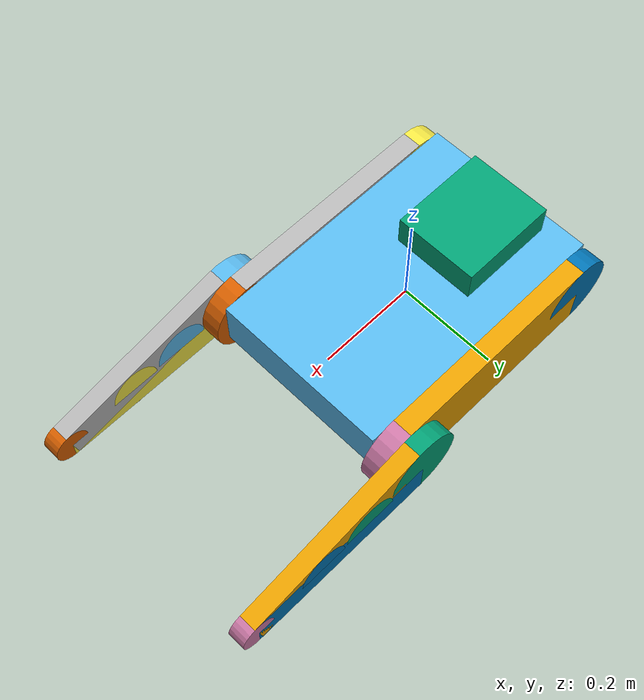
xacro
<?xml version="1.0"?>
<robot name="ros_control" xmlns:xacro="http://www.ros.org/wiki/xacro">

 <xacro:property name="PI" value="3.14"/>

<!-- body property -->
 <xacro:property name="body_len" value="0.55"/>
 <xacro:property name="body_width" value="0.36"/>
 <xacro:property name="body_height" value="0.10"/>
 <xacro:property name="body_mass" value="10.75"/>

<!-- wheel property -->
 <xacro:property name="wheel_radius" value="0.076"/>
 <xacro:property name="wheel_width" value="0.04"/>
 <xacro:property name="wheel_height" value="0.152"/>
 <xacro:property name="wheel_mass" value="1"/>

<!-- black box property -->
 <xacro:property name="box_len" value="0.2"/>
 <xacro:property name="box_width" value="0.17"/>
 <xacro:property name="box_height" value="0.064"/>
 <xacro:property name="box_mass" value="0.25"/>

<!-- track property -->
 <xacro:property name="track_len" value="0.45"/>
 <xacro:property name="track_width" value="0.04"/>
 <xacro:property name="track_height" value="0.152"/>
 <xacro:property name="track_mass" value="0.25"/>

<!-- wheel1 property -->
 <xacro:property name="wheel1_width" value="0.035"/>
 <xacro:property name="wheel1_mass" value="0.8"/>

<!-- track1 property -->
 <xacro:property name="track1_len" value="0.39"/>
 <xacro:property name="track1_width" value="0.035"/>
 <xacro:property name="track1_height" value="0.07"/>
 <xacro:property name="track1_mass" value="0.15"/>

<!-- wheel2 property -->
 <xacro:property name="wheel2_radius" value="0.035"/>
 <xacro:property name="wheel2_mass" value="0.3"/>
 <xacro:property name="wheel2_diam" value="0.07"/>

<!-- wheel3 property -->
 <xacro:property name="wheel3_radius" value="0.055"/>

<!-- wheel's inertia-->
 <xacro:macro name="cylinder_inertia" params ="m r h">
  <inertial>
   <mass value="${m}"/>
   <inertia ixx="${m*(3*r*r+h*h)/12}"  ixy="0.0" ixz="0.0"
            iyy="${m*r*r/2}"  iyz= "0.0"
            izz="${m*(3*r*r+h*h)/12}"/>
   </inertial>
 </xacro:macro>

<!-- box inertia -->

 <xacro:macro name="box_inertia" params ="m a b c">
  <inertial>
   <mass value="${m}"/>
   <inertia ixx="${m*(a*a+b*b)/12}"  ixy="0.0" ixz="0.0"
            iyy="${m*(b*b+c*c)/12}"  iyz= "0.0"
            izz="${m*(b*b+c*c)/12}"/>
   </inertial>
 </xacro:macro>

 <xacro:macro name= "inertial_matrix" params="mass">
  <inertial>
    <mass value="${mass}"/>
      <inertia ixx="1.0" ixy="0.0"
               iyy="1.0" iyz="0.0"
               izz="1.0" ixz="0.0"/>
   </inertial>
 </xacro:macro>

  <link name="base_link">
    <visual>
        <origin xyz="0 0 0" rpy="0 0 0" />
        <geometry>
            <box size="0.001 0.001 0.001" />
        </geometry>
    </visual>
  </link>

 <link name="body">
	<collision>
		<geometry>
			<box size="${body_len} ${body_width} ${body_height}"/>
		</geometry>
	</collision>
	<visual>
		<geometry>
			<box size="${body_len} ${body_width} ${body_height}"/>
		</geometry>
	</visual>
	<xacro:inertial_matrix mass="${body_mass}"/>
 </link>

  <joint name="body_joint" type="fixed">
    <origin xyz=" 0 0 0" rpy=" 0 0 0" />
    <parent link="base_link"/>
    <child link="body" />
  </joint>

<gazebo reference ="body">
    <turnGravityOff>false</turnGravityOff>
</gazebo>

 <link name= "box">
	<visual>
		<origin rpy= "0 0 0" xyz= "-0.1 0 0"/>
		<geometry>
			<box size="${box_len} ${box_width} ${box_height}"/>
		</geometry>
	</visual>
	<collision>
		<origin rpy= "0 0 0" xyz= "-0.1 0 0"/>
		<geometry>
			<box size="${box_len} ${box_width} ${box_height}"/>
		</geometry>
	</collision>
	<xacro:box_inertia m="${box_mass}" a="${box_width}" b="${box_height}" c="${box_len}"/>
 </link>

 <joint name="box_joint" type="fixed">
	<parent link="body"/>
	<child link="box"/>
	<origin xyz="-0.045 0.02 0.082" rpy="0 0 0"/>
 </joint>

<xacro:macro name="track" params= "prefix Y">
 <link name= "${prefix}_track">
	<visual>
		<origin rpy= "0 0 0" xyz= "0 0 0"/>
		<geometry>
			<box size="${track_len} ${track_width} ${track_height}"/>
		</geometry>
	</visual>
	<collision>
		<origin rpy= "0 0 0" xyz= "0 0 0"/>
		<geometry>
			<box size="${track_len} ${track_width} ${track_height}"/>
		</geometry>
	</collision>
	<xacro:inertial_matrix mass="${box_mass}"/>
 </link>

 <joint name="${prefix}_track_joint" type="fixed">
	<parent link="body"/>
	<child link="${prefix}_track"/>
	<origin xyz="0 ${((body_width/2) + (track_width/2))*Y} -0.02" rpy="0 0 0"/>
	<dynamics damping="0.0" friction="0.0"/>
 </joint>
</xacro:macro>

<xacro:macro name="wheel" params= "prefix suffix X Y Z">
 <link name= "${prefix}_${suffix}_wheel">
	<visual>
		<origin rpy= "${PI/2} 0 0" xyz= "0 0 0"/>
		<geometry>
			<cylinder length="${wheel_width}" radius= "${wheel_radius}"/>
		</geometry>
	</visual>
	<collision>
		<origin rpy= "${PI/2} 0 0" xyz= "0 0 0"/>
		<geometry>
			<cylinder length="${wheel_width}" radius= "${wheel_radius}"/>
		</geometry>
	</collision>
        <inertial>
        	<mass value="${wheel_mass}"/>
     			<inertia ixx="0.01" ixy="0.0"
               		iyy="0.02" iyz="0.0"
               		izz="0.01" ixz="0.0"/>
   	</inertial>
 </link>

 <joint name="${prefix}_${suffix}_wheel_joint" type="continuous">
	<parent link="${prefix}_track"/>
	<child link="${prefix}_${suffix}_wheel"/>
	<origin xyz="${0.225*X} 0 0" rpy="0 0 0"/>
	<axis xyz="0 1 0"/>
	<dynamics damping="0.0" friction="0.0"/>
 </joint>

 <transmission name="${prefix}_${suffix}_wheel_trans">
	<type>transmission_interface/SimpleTransmission</type>
	<actuator name="${prefix}_${suffix}_wheel_motor">
		<mechanicalReduction>1</mechanicalReduction>
	</actuator>
	<joint name="${prefix}_${suffix}_wheel_joint">
		<hardwareInterface>hardware_interface/VelocityJointInterface</hardwareInterface>
	</joint>
 </transmission>

<gazebo reference ="${prefix}_${suffix}_wheel">
    <self_collide>false</self_collide>
    <mu1 value="200.0"/>
    <mu2 value="100.0"/>
    <kp value="10000000.0"/>
    <kd value= "1.0"/>
</gazebo>
</xacro:macro>

<xacro:macro name="wheel1" params= "prefix Y">
 <link name= "${prefix}_wheel1">
	<visual>
		<origin rpy= "${PI/2} 0 0" xyz= "0 0 0"/>
		<geometry>
			<cylinder length="${wheel1_width}" radius= "${wheel_radius}"/>
		</geometry>
	</visual>
	<collision>
		<origin rpy= "${PI/2} 0 0" xyz= "0 0 0"/>
		<geometry>
			<cylinder length="${wheel1_width}" radius= "${wheel_radius}"/>
		</geometry>
	</collision>
	<xacro:cylinder_inertia m="${wheel1_mass}" r="${wheel_radius}" h="${wheel1_width}"/>
 </link>

 <joint name="${prefix}_wheel1_joint" type="continuous">
	<parent link="body"/>
	<child link="${prefix}_wheel1"/>
	<origin xyz="0.225 ${((body_width/2) + wheel_width + (wheel1_width/2))*Y} -0.02" rpy="0 0 0"/>
	<axis xyz="0 1 0"/>
	<limit effort="30" velocity="1.0"/>
	<dynamics damping="0.0" friction="0.0"/>
 </joint>

 <transmission name="${prefix}_wheel1_trans">
	<type>transmission_interface/SimpleTransmission</type>
	<actuator name="${prefix}_wheel1_motor">
		<mechanicalReduction>1</mechanicalReduction>
	</actuator>
	<joint name="${prefix}_wheel1_joint">
		<hardwareInterface>hardware_interface/PositionJointInterface</hardwareInterface>
	</joint>
 </transmission>
<gazebo reference ="${prefix}_wheel1">
    <self_collide>false</self_collide>
</gazebo>
</xacro:macro>

<xacro:macro name="track1" params= "prefix Z">
 <link name= "${prefix}_track1">
	<visual>
		<origin rpy= "0 0 0" xyz= "${track1_len/2} 0 ${((wheel_height-track1_height)/2)*Z}"/>
		<geometry>
			<box size="${track1_len} ${track1_width} ${track1_height}"/>
		</geometry>
	</visual>
	<collision>
		<origin rpy= "0 0 0" xyz= "${track1_len/2} 0 ${((wheel_height-track1_height)/2)*Z}"/>
		<geometry>
			<box size="${track1_len} ${track1_width} ${track1_height}"/>
		</geometry>
	</collision>
	<xacro:box_inertia m="${track1_mass}" a="${track1_width}" b="${track1_height}" c="${track1_len}"/>
 </link>

 <joint name="${prefix}_track1_joint" type="fixed">
	<parent link="${prefix}_wheel1"/>
	<child link="${prefix}_track1"/>
	<origin xyz="0 0 0" rpy="0 0 0"/>
	<dynamics damping="0.0" friction="0.0"/>
 </joint>
</xacro:macro>

<xacro:macro name="wheel2" params= "prefix Z">
 <link name= "${prefix}_wheel2">
	<visual>
		<origin rpy= "${PI/2} 0 0" xyz= "0 0 0"/>
		<geometry>
			<cylinder length="${track1_width}" radius= "${wheel2_radius}"/>
		</geometry>
	</visual>
	<collision>
		<origin rpy= "${PI/2} 0 0" xyz= "0 0 0"/>
		<geometry>
			<cylinder length="${track1_width}" radius= "${wheel2_radius}"/>
		</geometry>
	</collision>
	<xacro:cylinder_inertia m="${wheel2_mass}" r="${wheel2_radius}" h="${track1_width}"/>
 </link>

 <joint name="${prefix}_wheel2_joint" type="continuous">
	<parent link="${prefix}_track1"/>
	<child link="${prefix}_wheel2"/>
	<origin xyz="${track1_len} 0 ${((wheel_height-track1_height)/2)*Z}" rpy="0 0 0"/>
	<axis xyz="0 1 0"/>
	<dynamics damping="0.0" friction="0.0"/>
 </joint>

 <transmission name="${prefix}_wheel2_trans">
	<type>transmission_interface/SimpleTransmission</type>
	<actuator name="${prefix}_wheel2_motor">
		<mechanicalReduction>1</mechanicalReduction>
	</actuator>
	<joint name="${prefix}_wheel2_joint">
		<hardwareInterface>hardware_interface/VelocityJointInterface</hardwareInterface>
	</joint>
 </transmission>

<gazebo reference ="${prefix}_wheel2">
    <mu1 value="200.0"/>
    <mu2 value="100.0"/>
    <kp value="10000000.0"/>
    <kd value= "1.0"/>
</gazebo>
</xacro:macro>

<xacro:macro name="wheel3" params= "prefix Z">
 <link name= "${prefix}_wheel3">
	<visual>
		<origin rpy= "${PI/2} 0 0" xyz= "0 0 0"/>
		<geometry>
			<cylinder length="${track1_width}" radius= "${wheel3_radius}"/>
		</geometry>
	</visual>
	<collision>
		<origin rpy= "${PI/2} 0 0" xyz= "0 0 0"/>
		<geometry>
			<cylinder length="${track1_width}" radius= "${wheel3_radius}"/>
		</geometry>
	</collision>
	<xacro:cylinder_inertia m="${wheel2_mass}" r="${wheel3_radius}" h="${track1_width}"/>
 </link>

 <joint name="${prefix}_wheel3_joint" type="continuous">
	<parent link="${prefix}_track1"/>
	<child link="${prefix}_wheel3"/>
	<origin xyz="${track1_len/3} 0 ${((wheel_height-track1_height)/4)*Z}" rpy="0 0 0"/>
	<axis xyz="0 1 0"/>
	<dynamics damping="0.0" friction="0.0"/>
 </joint>

 <transmission name="${prefix}_wheel3_trans">
	<type>transmission_interface/SimpleTransmission</type>
	<actuator name="${prefix}_wheel3_motor">
		<mechanicalReduction>1</mechanicalReduction>
	</actuator>
	<joint name="${prefix}_wheel3_joint">
		<hardwareInterface>hardware_interface/VelocityJointInterface</hardwareInterface>
	</joint>
 </transmission>

<gazebo reference ="${prefix}_wheel3">
    <mu1 value="200.0"/>
    <mu2 value="100.0"/>
    <kp value="10000000.0"/>
    <kd value= "1.0"/>
</gazebo>
</xacro:macro>

<xacro:macro name="wheel4" params= "prefix Z">
 <link name= "${prefix}_wheel4">
	<visual>
		<origin rpy= "${PI/2} 0 0" xyz= "0 0 0"/>
		<geometry>
			<cylinder length="${track1_width}" radius= "${wheel3_radius/1.1}"/>
		</geometry>
	</visual>
	<collision>
		<origin rpy= "${PI/2} 0 0" xyz= "0 0 0"/>
		<geometry>
			<cylinder length="${track1_width}" radius= "${wheel3_radius/1.1}"/>
		</geometry>
	</collision>
	<xacro:cylinder_inertia m="${wheel2_mass}" r="${wheel3_radius}" h="${track1_width}"/>
 </link>

 <joint name="${prefix}_wheel4_joint" type="continuous">
	<parent link="${prefix}_track1"/>
	<child link="${prefix}_wheel4"/>
	<origin xyz="${(track1_len/3)+ 2*wheel3_radius} 0 ${((wheel_height-track1_height)/3)*Z}" rpy="0 0 0"/>
	<axis xyz="0 1 0"/>
	<dynamics damping="0.0" friction="0.0"/>
 </joint>

 <transmission name="${prefix}_wheel4_trans">
	<type>transmission_interface/SimpleTransmission</type>
	<actuator name="${prefix}_wheel4_motor">
		<mechanicalReduction>1</mechanicalReduction>
	</actuator>
	<joint name="${prefix}_wheel4_joint">
		<hardwareInterface>hardware_interface/VelocityJointInterface</hardwareInterface>
	</joint>
 </transmission>

<gazebo reference ="${prefix}_wheel4">
    <mu1 value="200.0"/>
    <mu2 value="100.0"/>
    <kp value="10000000.0"/>
    <kd value= "1.0"/>
</gazebo>
</xacro:macro>

<xacro:macro name="track2" params= "prefix">
 <link name= "${prefix}_track2">
	<visual>
		<origin rpy= "0 0 0" xyz= "${track1_len/2} 0 ${wheel_radius-(wheel2_diam/2)}"/>
		<geometry>
			<box size="${track1_len} ${track1_width} ${wheel2_diam}"/>
		</geometry>
	</visual>
	<collision>
		<origin rpy= "0 0 0" xyz= "${track1_len/2} 0 ${wheel_radius-(wheel2_diam/2)}"/>
		<geometry>
			<box size="${track1_len} ${track1_width} ${wheel2_diam}"/>
		</geometry>
	</collision>
	<xacro:box_inertia m="${track1_mass}" a="${track1_width}" b="${track1_height}" c="${track1_len}"/>
 </link>

 <joint name="${prefix}_track2_joint" type="fixed">
	<parent link="${prefix}_wheel1"/>
	<child link="${prefix}_track2"/>
	<origin xyz="0 0 0" rpy="0 ${PI/15} 0"/>
	<dynamics damping="0.0" friction="0.0"/>
 </joint>
</xacro:macro>

<xacro:wheel prefix="right" suffix="back" X="-1" Y="-1" Z="-1"/>
<xacro:wheel prefix="left" suffix="back" X="-1" Y="1" Z="-1"/>
<xacro:wheel prefix="right" suffix="front" X="1" Y="-1" Z="-1"/>
<xacro:wheel prefix="left" suffix="front" X="1" Y="1" Z="-1"/>
<xacro:track prefix="right" Y="-1"/>
<xacro:track prefix="left" Y="1"/>
<xacro:wheel1 prefix="right" Y="-1"/>
<xacro:wheel1 prefix="left" Y="1"/>
<xacro:track1 prefix="right" Z="-1"/>
<xacro:track1 prefix="left" Z="-1"/>
<xacro:wheel2 prefix="right" Z="-1"/>
<xacro:wheel2 prefix="left" Z="-1"/>
<xacro:track2 prefix="right"/>
<xacro:track2 prefix="left"/>
<xacro:wheel3 prefix="right" Z="-1"/>
<xacro:wheel3 prefix="left" Z="-1"/>
<xacro:wheel4 prefix="right" Z="-1"/>
<xacro:wheel4 prefix="left" Z="-1"/>

 <gazebo>
 	<plugin name="gazebo_ros_control" filename= "libgazebo_ros_control.so">
   		<robotNamespace>/</robotNamespace>
  	</plugin>
 </gazebo>
</robot>
